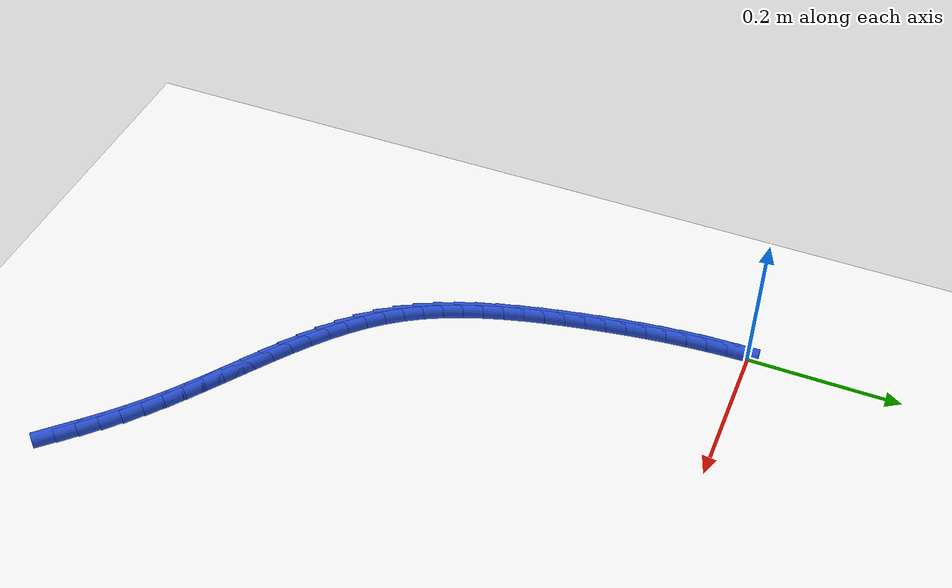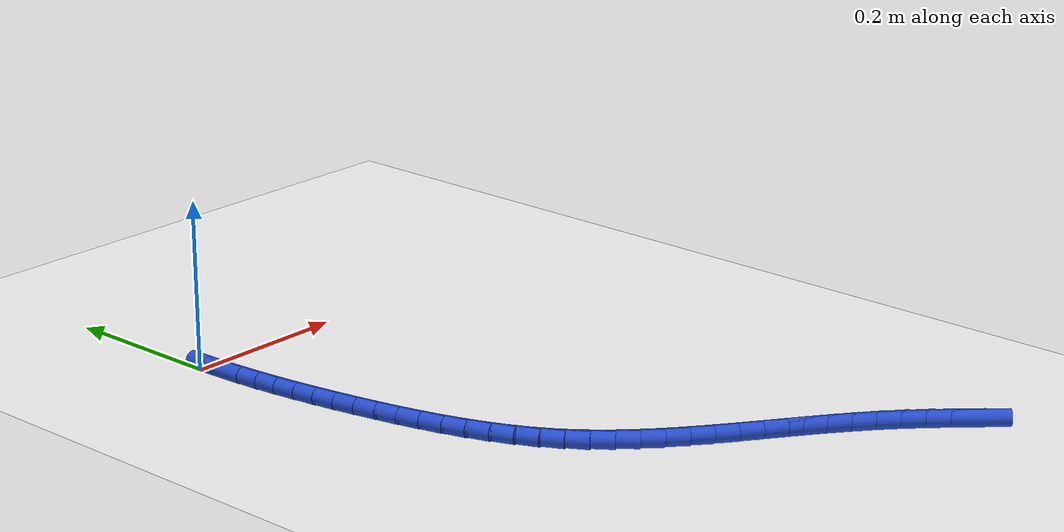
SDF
<sdf version="1.6">
 <world name="default">
  <model name="ground_plane">
   <static>1</static>
   <link name="link">
    <collision name="collision">
     <geometry><plane><normal>0 0 1</normal><size>100 100</size></plane></geometry>
     <surface><friction><ode><mu>100</mu><mu2>50</mu2></ode></friction></surface>
    </collision>
    <visual name="visual">
     <cast_shadows>0</cast_shadows>
     <geometry><plane><normal>0 0 1</normal><size>100 100</size></plane></geometry>
     <material>
      <script><uri>file://media/materials/scripts/gazebo.material</uri><name>Gazebo/WhiteGlow</name></script>
     </material>
    </visual>
   </link>
  </model>
  <model name="line">
   <link name="link_236">
    <pose>0.44192519079004583 -0.7440964482081057 0.01 0 1.57 -0.8140274019676713</pose>
    <collision name="collision">
     <geometry><cylinder><radius>0.01</radius><length>0.08</length></cylinder></geometry>
    </collision>
    <visual name="visual">
     <material>
      <script><name>Gazebo/Blue</name><uri>file://media/materials/scripts/gazebo.material</uri></script>
     </material>
     <geometry><cylinder><radius>0.01</radius><length>0.08</length></cylinder></geometry>
    </visual>
   </link>
   <link name="link_237">
    <pose>0.4233209297467979 -0.7243952307657031 0.01 0 1.57 -0.7923658335687034</pose>
    <collision name="collision">
     <geometry><cylinder><radius>0.01</radius><length>0.08</length></cylinder></geometry>
    </collision>
    <visual name="visual">
     <material>
      <script><name>Gazebo/Blue</name><uri>file://media/materials/scripts/gazebo.material</uri></script>
     </material>
     <geometry><cylinder><radius>0.01</radius><length>0.08</length></cylinder></geometry>
    </visual>
   </link>
   <link name="link_238">
    <pose>0.40424081384523536 -0.7050473569735213 0.01 0 1.57 -0.762582080308472</pose>
    <collision name="collision">
     <geometry><cylinder><radius>0.01</radius><length>0.08</length></cylinder></geometry>
    </collision>
    <visual name="visual">
     <material>
      <script><name>Gazebo/Blue</name><uri>file://media/materials/scripts/gazebo.material</uri></script>
     </material>
     <geometry><cylinder><radius>0.01</radius><length>0.08</length></cylinder></geometry>
    </visual>
   </link>
   <link name="link_239">
    <pose>0.38455103582821065 -0.6862361725767876 0.01 0 1.57 -0.7248648335698623</pose>
    <collision name="collision">
     <geometry><cylinder><radius>0.01</radius><length>0.08</length></cylinder></geometry>
    </collision>
    <visual name="visual">
     <material>
      <script><name>Gazebo/Blue</name><uri>file://media/materials/scripts/gazebo.material</uri></script>
     </material>
     <geometry><cylinder><radius>0.01</radius><length>0.08</length></cylinder></geometry>
    </visual>
   </link>
   <link name="link_240">
    <pose>0.36412127586177306 -0.6681412900806772 0.01 0 1.57 -0.6865254985315347</pose>
    <collision name="collision">
     <geometry><cylinder><radius>0.01</radius><length>0.08</length></cylinder></geometry>
    </collision>
    <visual name="visual">
     <material>
      <script><name>Gazebo/Blue</name><uri>file://media/materials/scripts/gazebo.material</uri></script>
     </material>
     <geometry><cylinder><radius>0.01</radius><length>0.08</length></cylinder></geometry>
    </visual>
   </link>
   <link name="link_241">
    <pose>0.34295702268647943 -0.6507969407215846 0.01 0 1.57 -0.6569508516654595</pose>
    <collision name="collision">
     <geometry><cylinder><radius>0.01</radius><length>0.08</length></cylinder></geometry>
    </collision>
    <visual name="visual">
     <material>
      <script><name>Gazebo/Blue</name><uri>file://media/materials/scripts/gazebo.material</uri></script>
     </material>
     <geometry><cylinder><radius>0.01</radius><length>0.08</length></cylinder></geometry>
    </visual>
   </link>
   <link name="link_242">
    <pose>0.32124032125501806 -0.6340483546641715 0.01 0 1.57 -0.6366171474597784</pose>
    <collision name="collision">
     <geometry><cylinder><radius>0.01</radius><length>0.08</length></cylinder></geometry>
    </collision>
    <visual name="visual">
     <material>
      <script><name>Gazebo/Blue</name><uri>file://media/materials/scripts/gazebo.material</uri></script>
     </material>
     <geometry><cylinder><radius>0.01</radius><length>0.08</length></cylinder></geometry>
    </visual>
   </link>
   <link name="link_243">
    <pose>0.29916502976634496 -0.6177281161504374 0.01 0 1.57 -0.625398382630428</pose>
    <collision name="collision">
     <geometry><cylinder><radius>0.01</radius><length>0.08</length></cylinder></geometry>
    </collision>
    <visual name="visual">
     <material>
      <script><name>Gazebo/Blue</name><uri>file://media/materials/scripts/gazebo.material</uri></script>
     </material>
     <geometry><cylinder><radius>0.01</radius><length>0.08</length></cylinder></geometry>
    </visual>
   </link>
   <link name="link_244">
    <pose>0.2769250064194133 -0.6016688094223793 0.01 0 1.57 -0.623250047189765</pose>
    <collision name="collision">
     <geometry><cylinder><radius>0.01</radius><length>0.08</length></cylinder></geometry>
    </collision>
    <visual name="visual">
     <material>
      <script><name>Gazebo/Blue</name><uri>file://media/materials/scripts/gazebo.material</uri></script>
     </material>
     <geometry><cylinder><radius>0.01</radius><length>0.08</length></cylinder></geometry>
    </visual>
   </link>
   <link name="link_245">
    <pose>0.25471410941317896 -0.5857030187219961 0.01 0 1.57 -0.6302369046718643</pose>
    <collision name="collision">
     <geometry><cylinder><radius>0.01</radius><length>0.08</length></cylinder></geometry>
    </collision>
    <visual name="visual">
     <material>
      <script><name>Gazebo/Blue</name><uri>file://media/materials/scripts/gazebo.material</uri></script>
     </material>
     <geometry><cylinder><radius>0.01</radius><length>0.08</length></cylinder></geometry>
    </visual>
   </link>
   <link name="link_246">
    <pose>0.2327261969465958 -0.5696633282912859 0.01 0 1.57 -0.6465413030150521</pose>
    <collision name="collision">
     <geometry><cylinder><radius>0.01</radius><length>0.08</length></cylinder></geometry>
    </collision>
    <visual name="visual">
     <material>
      <script><name>Gazebo/Blue</name><uri>file://media/materials/scripts/gazebo.material</uri></script>
     </material>
     <geometry><cylinder><radius>0.01</radius><length>0.08</length></cylinder></geometry>
    </visual>
   </link>
   <link name="link_247">
    <pose>0.2111551272186178 -0.5533823223722457 0.01 0 1.57 -0.6724514409772469</pose>
    <collision name="collision">
     <geometry><cylinder><radius>0.01</radius><length>0.08</length></cylinder></geometry>
    </collision>
    <visual name="visual">
     <material>
      <script><name>Gazebo/Blue</name><uri>file://media/materials/scripts/gazebo.material</uri></script>
     </material>
     <geometry><cylinder><radius>0.01</radius><length>0.08</length></cylinder></geometry>
    </visual>
   </link>
   <link name="link_248">
    <pose>0.1901947584282007 -0.5366925852068752 0.01 0 1.57 -0.7083251975197417</pose>
    <collision name="collision">
     <geometry><cylinder><radius>0.01</radius><length>0.08</length></cylinder></geometry>
    </collision>
    <visual name="visual">
     <material>
      <script><name>Gazebo/Blue</name><uri>file://media/materials/scripts/gazebo.material</uri></script>
     </material>
     <geometry><cylinder><radius>0.01</radius><length>0.08</length></cylinder></geometry>
    </visual>
   </link>
   <link name="link_249">
    <pose>0.17003894877429784 -0.5194267010371715 0.01 0 1.57 -0.7545216996965165</pose>
    <collision name="collision">
     <geometry><cylinder><radius>0.01</radius><length>0.08</length></cylinder></geometry>
    </collision>
    <visual name="visual">
     <material>
      <script><name>Gazebo/Blue</name><uri>file://media/materials/scripts/gazebo.material</uri></script>
     </material>
     <geometry><cylinder><radius>0.01</radius><length>0.08</length></cylinder></geometry>
    </visual>
   </link>
   <link name="link_250">
    <pose>0.150881556455865 -0.5014172541051333 0.01 0 1.57 -0.811291646269003</pose>
    <collision name="collision">
     <geometry><cylinder><radius>0.01</radius><length>0.08</length></cylinder></geometry>
    </collision>
    <visual name="visual">
     <material>
      <script><name>Gazebo/Blue</name><uri>file://media/materials/scripts/gazebo.material</uri></script>
     </material>
     <geometry><cylinder><radius>0.01</radius><length>0.08</length></cylinder></geometry>
    </visual>
   </link>
   <link name="link_251">
    <pose>0.1329164396718556 -0.4824968286527581 0.01 0 1.57 -0.8786220249900076</pose>
    <collision name="collision">
     <geometry><cylinder><radius>0.01</radius><length>0.08</length></cylinder></geometry>
    </collision>
    <visual name="visual">
     <material>
      <script><name>Gazebo/Blue</name><uri>file://media/materials/scripts/gazebo.material</uri></script>
     </material>
     <geometry><cylinder><radius>0.01</radius><length>0.08</length></cylinder></geometry>
    </visual>
   </link>
   <link name="link_252">
    <pose>0.11633745662122522 -0.4624980089220449 0.01 0 1.57 -0.9559184201106666</pose>
    <collision name="collision">
     <geometry><cylinder><radius>0.01</radius><length>0.08</length></cylinder></geometry>
    </collision>
    <visual name="visual">
     <material>
      <script><name>Gazebo/Blue</name><uri>file://media/materials/scripts/gazebo.material</uri></script>
     </material>
     <geometry><cylinder><radius>0.01</radius><length>0.08</length></cylinder></geometry>
    </visual>
   </link>
   <link name="link_253">
    <pose>0.10133609152134596 -0.44125576831666224 0.01 0 1.57 -1.0353589237651706</pose>
    <collision name="collision">
     <geometry><cylinder><radius>0.01</radius><length>0.08</length></cylinder></geometry>
    </collision>
    <visual name="visual">
     <material>
      <script><name>Gazebo/Blue</name><uri>file://media/materials/scripts/gazebo.material</uri></script>
     </material>
     <geometry><cylinder><radius>0.01</radius><length>0.08</length></cylinder></geometry>
    </visual>
   </link>
   <link name="link_254">
    <pose>0.08797538275280536 -0.41873434740582977 0.01 0 1.57 -1.1062490719267006</pose>
    <collision name="collision">
     <geometry><cylinder><radius>0.01</radius><length>0.08</length></cylinder></geometry>
    </collision>
    <visual name="visual">
     <material>
      <script><name>Gazebo/Blue</name><uri>file://media/materials/scripts/gazebo.material</uri></script>
     </material>
     <geometry><cylinder><radius>0.01</radius><length>0.08</length></cylinder></geometry>
    </visual>
   </link>
   <link name="link_255">
    <pose>0.07612693211034778 -0.3950906474588174 0.01 0 1.57 -1.167961347315878</pose>
    <collision name="collision">
     <geometry><cylinder><radius>0.01</radius><length>0.08</length></cylinder></geometry>
    </collision>
    <visual name="visual">
     <material>
      <script><name>Gazebo/Blue</name><uri>file://media/materials/scripts/gazebo.material</uri></script>
     </material>
     <geometry><cylinder><radius>0.01</radius><length>0.08</length></cylinder></geometry>
    </visual>
   </link>
   <link name="link_256">
    <pose>0.06564673696644203 -0.37049727394744864 0.01 0 1.57 -1.2209699612635925</pose>
    <collision name="collision">
     <geometry><cylinder><radius>0.01</radius><length>0.08</length></cylinder></geometry>
    </collision>
    <visual name="visual">
     <material>
      <script><name>Gazebo/Blue</name><uri>file://media/materials/scripts/gazebo.material</uri></script>
     </material>
     <geometry><cylinder><radius>0.01</radius><length>0.08</length></cylinder></geometry>
    </visual>
   </link>
   <link name="link_257">
    <pose>0.056390794693556075 -0.34512683234354546 0.01 0 1.57 -1.2658597664805167</pose>
    <collision name="collision">
     <geometry><cylinder><radius>0.01</radius><length>0.08</length></cylinder></geometry>
    </collision>
    <visual name="visual">
     <material>
      <script><name>Gazebo/Blue</name><uri>file://media/materials/scripts/gazebo.material</uri></script>
     </material>
     <geometry><cylinder><radius>0.01</radius><length>0.08</length></cylinder></geometry>
    </visual>
   </link>
   <link name="link_258">
    <pose>0.04821510266415784 -0.31915192811892934 0.01 0 1.57 -1.303219441495341</pose>
    <collision name="collision">
     <geometry><cylinder><radius>0.01</radius><length>0.08</length></cylinder></geometry>
    </collision>
    <visual name="visual">
     <material>
      <script><name>Gazebo/Blue</name><uri>file://media/materials/scripts/gazebo.material</uri></script>
     </material>
     <geometry><cylinder><radius>0.01</radius><length>0.08</length></cylinder></geometry>
    </visual>
   </link>
   <link name="link_259">
    <pose>0.04097565825071607 -0.2927451667454243 0.01 0 1.57 -1.3335728405559124</pose>
    <collision name="collision">
     <geometry><cylinder><radius>0.01</radius><length>0.08</length></cylinder></geometry>
    </collision>
    <visual name="visual">
     <material>
      <script><name>Gazebo/Blue</name><uri>file://media/materials/scripts/gazebo.material</uri></script>
     </material>
     <geometry><cylinder><radius>0.01</radius><length>0.08</length></cylinder></geometry>
    </visual>
   </link>
   <link name="link_260">
    <pose>0.034528458825698514 -0.26607915369485097 0.01 0 1.57 -1.357336729964259</pose>
    <collision name="collision">
     <geometry><cylinder><radius>0.01</radius><length>0.08</length></cylinder></geometry>
    </collision>
    <visual name="visual">
     <material>
      <script><name>Gazebo/Blue</name><uri>file://media/materials/scripts/gazebo.material</uri></script>
     </material>
     <geometry><cylinder><radius>0.01</radius><length>0.08</length></cylinder></geometry>
    </visual>
   </link>
   <link name="link_261">
    <pose>0.028729501761573795 -0.23932649443903334 0.01 0 1.57 -1.3751769759707089</pose>
    <collision name="collision">
     <geometry><cylinder><radius>0.01</radius><length>0.08</length></cylinder></geometry>
    </collision>
    <visual name="visual">
     <material>
      <script><name>Gazebo/Blue</name><uri>file://media/materials/scripts/gazebo.material</uri></script>
     </material>
     <geometry><cylinder><radius>0.01</radius><length>0.08</length></cylinder></geometry>
    </visual>
   </link>
   <link name="link_262">
    <pose>0.023443253788133816 -0.21264894026893535 0.01 0 1.57 -1.391545699420007</pose>
    <collision name="collision">
     <geometry><cylinder><radius>0.01</radius><length>0.08</length></cylinder></geometry>
    </collision>
    <visual name="visual">
     <material>
      <script><name>Gazebo/Blue</name><uri>file://media/materials/scripts/gazebo.material</uri></script>
     </material>
     <geometry><cylinder><radius>0.01</radius><length>0.08</length></cylinder></geometry>
    </visual>
   </link>
   <link name="link_263">
    <pose>0.018630056046629873 -0.18608537149940108 0.01 0 1.57 -1.4091606203835405</pose>
    <collision name="collision">
     <geometry><cylinder><radius>0.01</radius><length>0.08</length></cylinder></geometry>
    </collision>
    <visual name="visual">
     <material>
      <script><name>Gazebo/Blue</name><uri>file://media/materials/scripts/gazebo.material</uri></script>
     </material>
     <geometry><cylinder><radius>0.01</radius><length>0.08</length></cylinder></geometry>
    </visual>
   </link>
   <link name="link_264">
    <pose>0.014310899835813086 -0.1595969402596097 0.01 0 1.57 -1.4280061061637783</pose>
    <collision name="collision">
     <geometry><cylinder><radius>0.01</radius><length>0.08</length></cylinder></geometry>
    </collision>
    <visual name="visual">
     <material>
      <script><name>Gazebo/Blue</name><uri>file://media/materials/scripts/gazebo.material</uri></script>
     </material>
     <geometry><cylinder><radius>0.01</radius><length>0.08</length></cylinder></geometry>
    </visual>
   </link>
   <link name="link_265">
    <pose>0.010507734535766831 -0.13314357081839356 0.01 0 1.57 -1.4480073278553955</pose>
    <collision name="collision">
     <geometry><cylinder><radius>0.01</radius><length>0.08</length></cylinder></geometry>
    </collision>
    <visual name="visual">
     <material>
      <script><name>Gazebo/Blue</name><uri>file://media/materials/scripts/gazebo.material</uri></script>
     </material>
     <geometry><cylinder><radius>0.01</radius><length>0.08</length></cylinder></geometry>
    </visual>
   </link>
   <link name="link_266">
    <pose>0.00724250952657398 -0.10668518744458165 0.01 0 1.57 -1.4690738928856104</pose>
    <collision name="collision">
     <geometry><cylinder><radius>0.01</radius><length>0.08</length></cylinder></geometry>
    </collision>
    <visual name="visual">
     <material>
      <script><name>Gazebo/Blue</name><uri>file://media/materials/scripts/gazebo.material</uri></script>
     </material>
     <geometry><cylinder><radius>0.01</radius><length>0.08</length></cylinder></geometry>
    </visual>
   </link>
   <link name="link_267">
    <pose>0.004537174188317836 -0.08018171440700629 0.01 0 1.57 -1.491100682877091</pose>
    <collision name="collision">
     <geometry><cylinder><radius>0.01</radius><length>0.08</length></cylinder></geometry>
    </collision>
    <visual name="visual">
     <material>
      <script><name>Gazebo/Blue</name><uri>file://media/materials/scripts/gazebo.material</uri></script>
     </material>
     <geometry><cylinder><radius>0.01</radius><length>0.08</length></cylinder></geometry>
    </visual>
   </link>
   <link name="link_268">
    <pose>0.0024136779010813943 -0.05359307597449728 0.01 0 1.57 -1.5139692520154355</pose>
    <collision name="collision">
     <geometry><cylinder><radius>0.01</radius><length>0.08</length></cylinder></geometry>
    </collision>
    <visual name="visual">
     <material>
      <script><name>Gazebo/Blue</name><uri>file://media/materials/scripts/gazebo.material</uri></script>
     </material>
     <geometry><cylinder><radius>0.01</radius><length>0.08</length></cylinder></geometry>
    </visual>
   </link>
   <link name="link_269">
    <pose>0.0008939700449477209 -0.026879196415884467 0.01 0 1.57 -1.537549773268745</pose>
    <collision name="collision">
     <geometry><cylinder><radius>0.01</radius><length>0.08</length></cylinder></geometry>
    </collision>
    <visual name="visual">
     <material>
      <script><name>Gazebo/Blue</name><uri>file://media/materials/scripts/gazebo.material</uri></script>
     </material>
     <geometry><cylinder><radius>0.01</radius><length>0.08</length></cylinder></geometry>
    </visual>
   </link>
  </model>
 </world>
</sdf>
